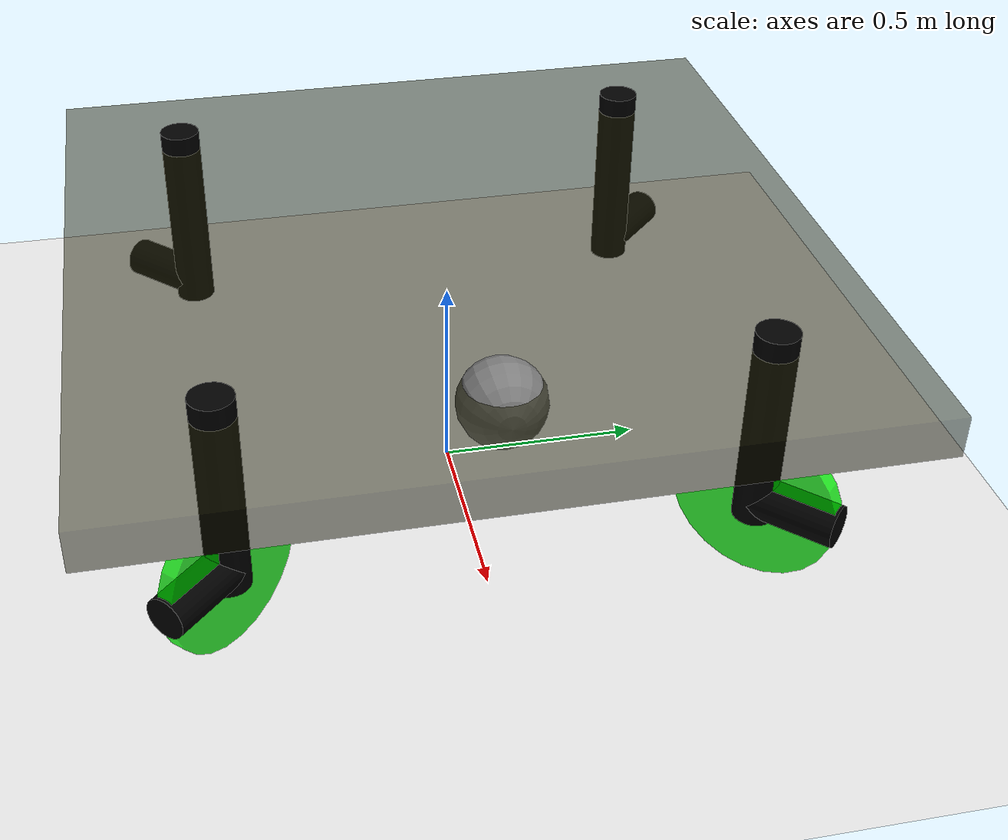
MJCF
<mujoco>
	<option gravity="0 0 -9.81" />
	<worldbody>
        <light cutoff="100" diffuse="1 1 1" dir="-0 0 -1.3" directional="true" exponent="1" pos="0 0 1.3" specular=".1 .1 .1"/>
        <light diffuse=".5 .5 .5" pos="0 0 3" dir="0 0 -1"/>
		<geom type="plane" size="50 50 0.1" rgba=".9 .9 .9 1" material="checker_material"/>
		<body name="chassis" pos="0 0 0.6" euler='0 90 0'>
			<joint type="free"/>
			<geom type="box" size=".05 .9 .9" rgba=".1 .1 0 0.5" density="2000"/>
            <camera euler="180 -30 90" fovy="75" name="tracking_camera" pos="-2.5 0 -3" mode="trackcom"/>
			<site name="marker" pos = "0 0 0.6" size="0.1" />
			<body name="l-front-caster" pos="0.15 0.6 0.6" euler='135 90 0'>
                <joint damping="0.1" name="l-front-steer" type="hinge" axis="0 0 -1"/>
                <geom type="cylinder" size=".05 0.25" rgba="0 0 0 1"/>
                <body name="l-front-wheel" pos="0 0 0.2" euler="90 0 0">
                    <joint damping="0.1" name="l-front-wheel" type="hinge" axis="0 0 1" limited="false"/>
                    <geom type="cylinder" size=".2 0.02" rgba="0 1 0 0.8"/>
                </body>
                <body name="l-front-caster-axle" pos="0.1 0 0.2" euler="0 90 0">
                    <geom type="cylinder" size=".05 0.1" rgba="0 0 0 1"/>
                </body>
            </body>
            <body name="r-front-caster" pos="0.15 -0.6 0.6" euler='-135 90 0'>
                <joint damping="0.1" name="r-front-steer" type="hinge" axis="0 0 -1"/>
                <geom type="cylinder" size=".05 0.25" rgba="0 0 0 1"/>
                <body name="r-front-wheel" pos="0.0 0 0.2" euler="90 0 0">
                    <joint damping="0.1" name="r-front-wheel" type="hinge" axis="0 0 1" limited="false"/>
                    <geom type="cylinder" size=".2 0.02" rgba="0 1 0 0.8"/>
                </body>
                <body name="r-front-caster-axle" pos="0.1 0 0.2" euler="0 90 0">
                    <geom type="cylinder" size=".05 0.1" rgba="0 0 0 1"/>
                </body>
            </body>
            <body name="l-back-caster" pos="0.15 0.6 -0.6" euler='45 90 0'>
                <joint damping="0.1" name="l-back-steer" type="hinge" axis="0 0 -1"/>
                <geom type="cylinder" size=".05 0.25" rgba="0 0 0 1"/>
                <body name="l-back-wheel" pos="0 0 0.2" euler="90 0 0">
                    <joint damping="0.1" name="l-back-wheel" type="hinge" axis="0 0 1" limited="false"/>
                    <geom type="cylinder" size=".2 0.02" rgba="0 1 0 0.8"/>
                </body>
                <body name="l-back-caster-axle" pos="0.1 0 0.2" euler="0 90 0">
                    <geom type="cylinder" size=".05 0.1" rgba="0 0 0 1"/>
                </body>
            </body>
            <body name="r-back-caster" pos="0.15 -0.6 -0.6" euler='-45 90 0'>
                <joint damping="0.1" name="r-back-steer" type="hinge" axis="0 0 -1"/>
                <geom type="cylinder" size=".05 0.25" rgba="0 0 0 1"/>
                <body name="r-back-wheel" pos="0 0 0.2" euler="90 0 0">
                    <joint damping="0.1" name="r-back-wheel" type="hinge" axis="0 0 1" limited="false"/>
                    <geom type="cylinder" size=".2 0.02" rgba="0 1 0 0.8"/>
                </body>
                <body name="r-back-caster-axle" pos="0.1 0 0.2" euler="0 90 0">
                    <geom type="cylinder" size=".05 0.1" rgba="0 0 0 1"/>
                </body>
            </body>
		</body>
	</worldbody>
	<actuator>
        <velocity name="l-front-steer-servo" joint="l-front-steer" kv="10"/>
        <velocity name="r-front-steer-servo" joint="r-front-steer" kv="10"/>
		<velocity name="l-back-steer-servo" joint="l-back-steer" kv="10"/>
        <velocity name="r-back-steer-servo" joint="r-back-steer" kv="10"/>

        <velocity name="l-front-wheel-servo" joint="l-front-wheel" kv="10"/>
        <velocity name="r-front-wheel-servo" joint="r-front-wheel" kv="10"/>
        <velocity name="l-back-wheel-servo" joint="l-back-wheel" kv="10"/>
        <velocity name="r-back-wheel-servo" joint="r-back-wheel" kv="10"/>
	</actuator>
    <asset>
        <texture builtin="gradient" height="100" rgb1="1 1 1" rgb2="0 0 0" type="skybox" width="100"/>
        <texture builtin="flat" height="1278" mark="cross" markrgb="1 1 1" name="texgeom" random="0.01" rgb1="0.8 0.6 0.4" rgb2="0.8 0.6 0.4" type="cube" width="127"/>
        <texture builtin="checker" height="100" name="texplane" rgb1="0 0 0" rgb2="0.8 0.8 0.8" type="2d" width="100"/>
        <material name="checker_material" reflectance="0.5" shininess="1" specular="1" texrepeat="60 60" texture="texplane"/>
        <material name="geom" texture="texgeom" texuniform="true"/>
    </asset>
    <sensor>
        <jointvel name="l-front-steer-vel" joint="l-front-steer"/>
        <jointvel name="r-front-steer-vel" joint="r-front-steer"/>
        <jointvel name="l-back-steer-vel" joint="l-back-steer"/>
        <jointvel name="r-back-steer-vel" joint="r-back-steer"/>

        <jointvel name="l-front-wheel-vel" joint="l-front-wheel"/>
        <jointvel name="r-front-wheel-vel" joint="r-front-wheel"/>
        <jointvel name="l-back-wheel-vel" joint="l-back-wheel"/>
        <jointvel name="r-back-wheel-vel" joint="r-back-wheel"/>

        <jointpos name="l-front-steer-pos" joint="l-front-steer"/>
        <jointpos name="r-front-steer-pos" joint="r-front-steer"/>
        <jointpos name="l-back-steer-pos" joint="l-back-steer"/>
        <jointpos name="r-back-steer-pos" joint="r-back-steer"/>

        <jointpos name="l-front-wheel-pos" joint="l-front-wheel"/>
        <jointpos name="r-front-wheel-pos" joint="r-front-wheel"/>
        <jointpos name="l-back-wheel-pos" joint="l-back-wheel"/>
        <jointpos name="r-back-wheel-pos" joint="r-back-wheel"/>
    </sensor>
</mujoco>
